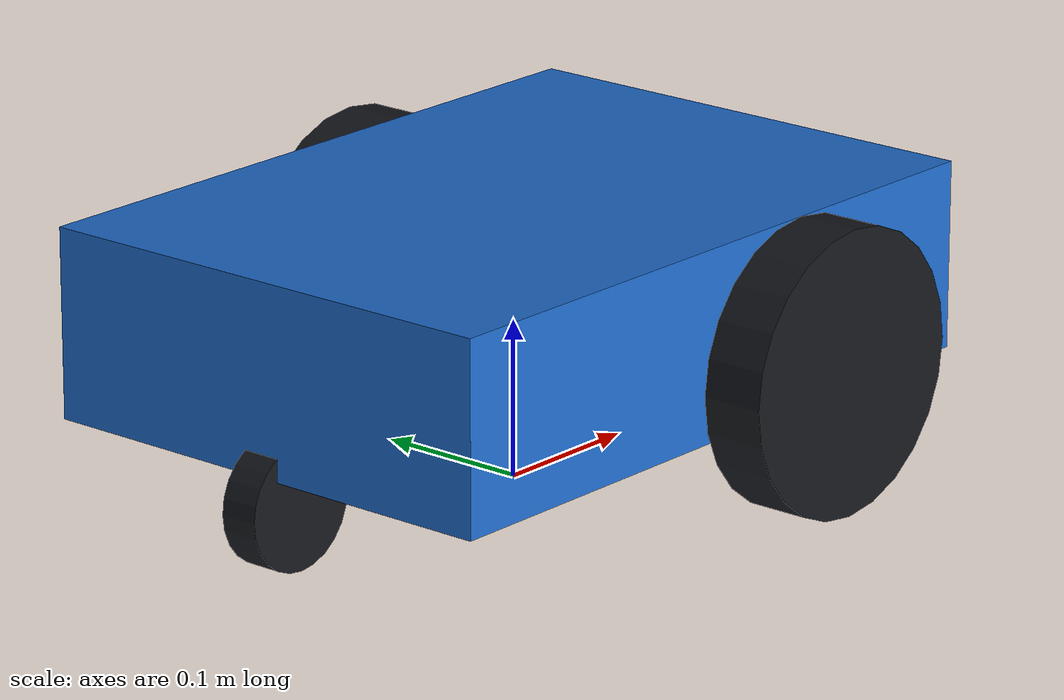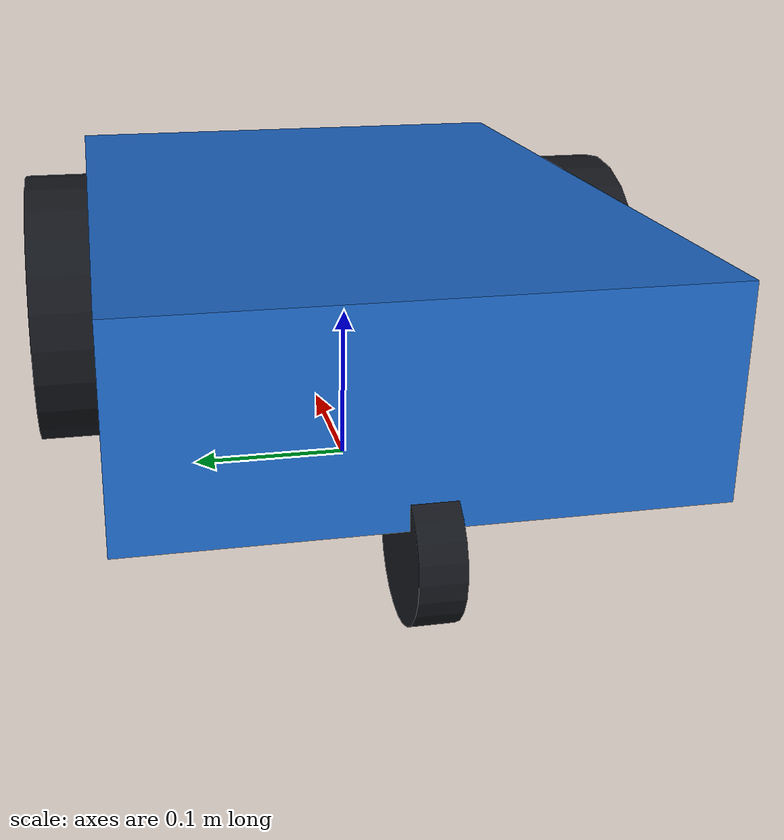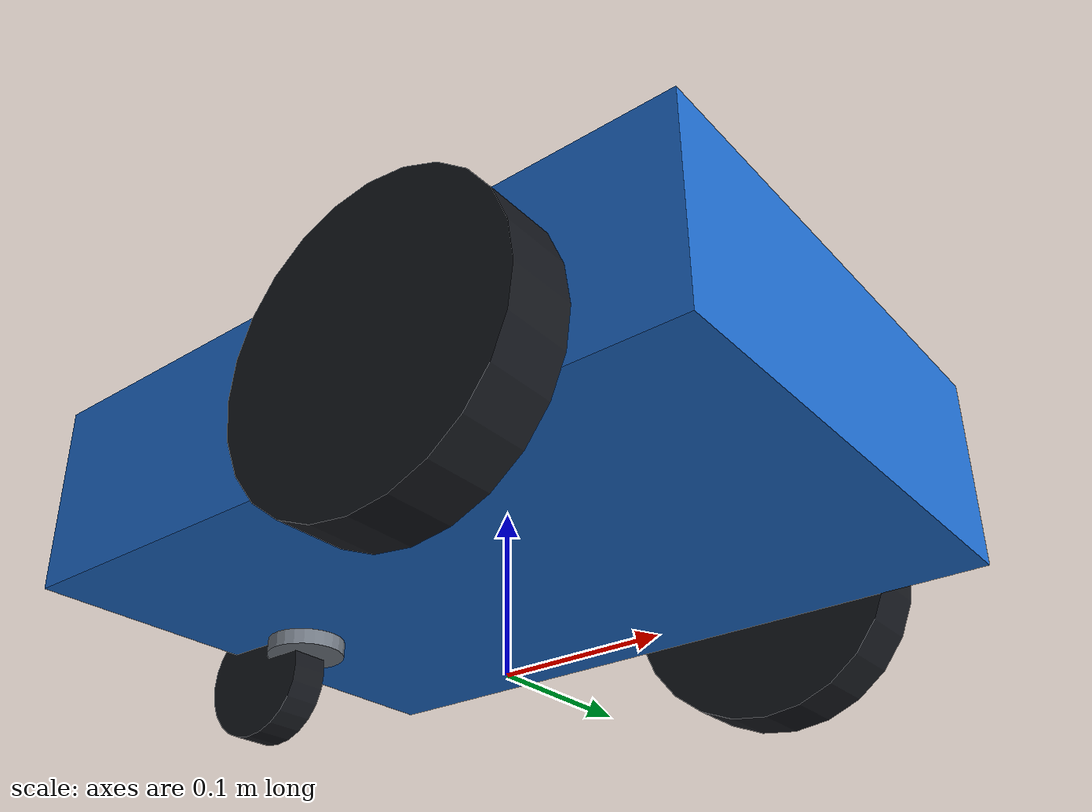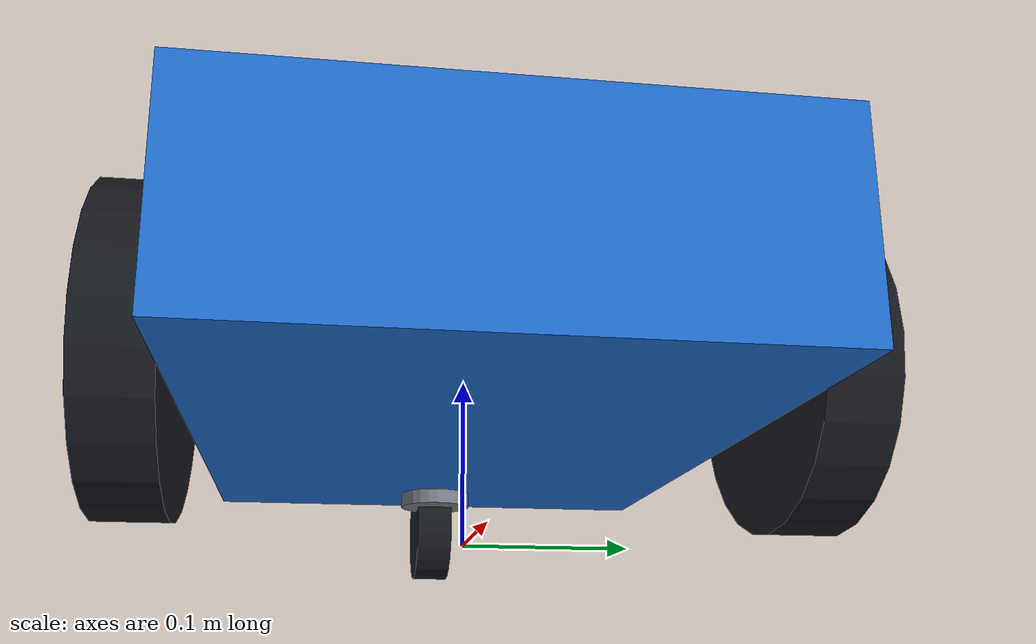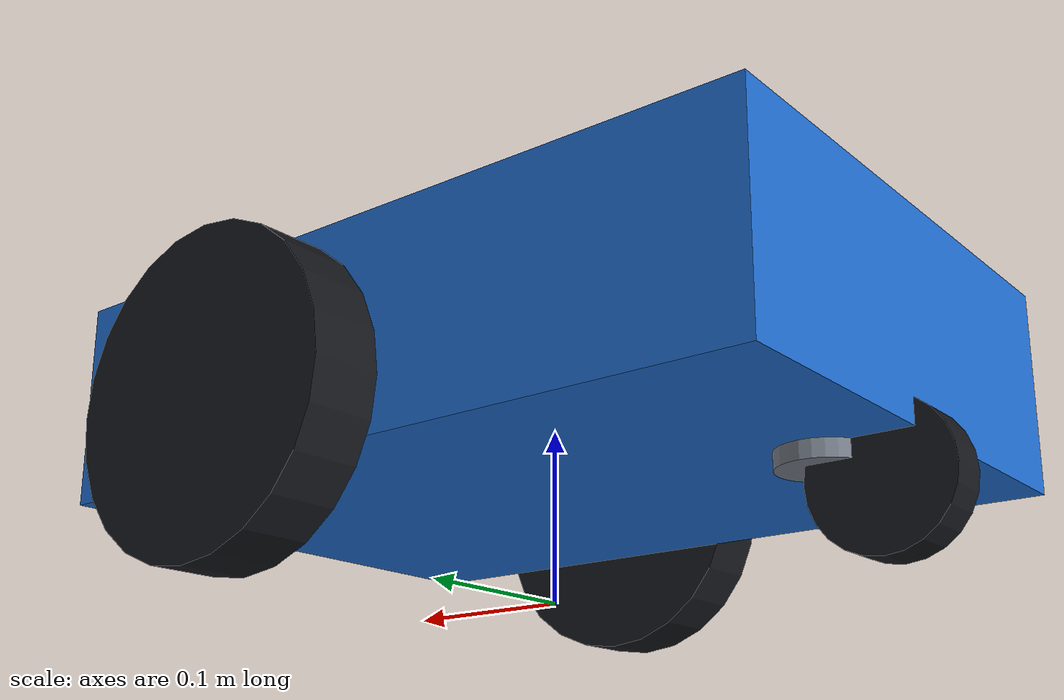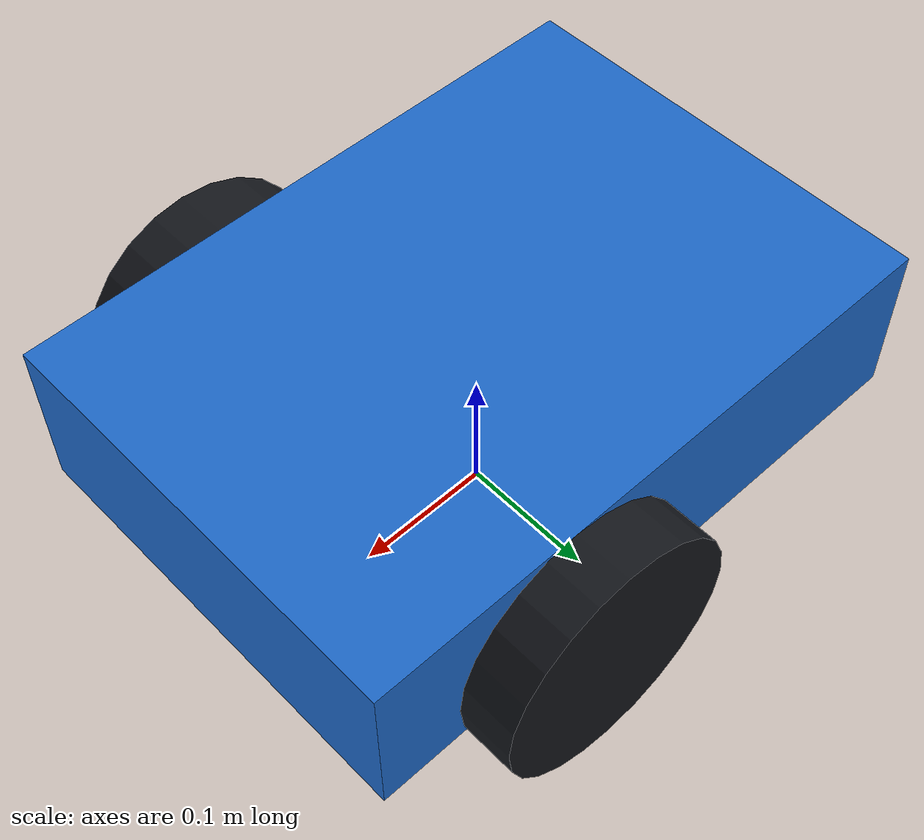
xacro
<?xml version="1.0"?>
<!-- Two-wheel differential-drive robot with a passive swivelling caster. -->
<robot name="diffbot" xmlns:xacro="http://www.ros.org/wiki/xacro">
  <xacro:include filename="$(find gazebo_tutorial_description)/urdf/common.xacro"/>
  <xacro:include filename="$(find gazebo_tutorial_plugins)/urdf/ground_truth_path_plugin.gazebo.xacro"/>

  <!-- Dimensions are declared once and reused by geometry and plugins. -->
  <xacro:property name="base_length" value="0.45"/>
  <xacro:property name="base_width" value="0.32"/>
  <xacro:property name="base_height" value="0.12"/>
  <xacro:property name="base_mass" value="7.0"/>
  <xacro:property name="base_z" value="0.12"/>

  <xacro:property name="wheel_radius" value="0.09"/>
  <xacro:property name="wheel_width" value="0.04"/>
  <xacro:property name="wheel_mass" value="0.55"/>
  <xacro:property name="wheel_separation" value="0.36"/>
  <xacro:property name="wheel_x" value="0.075"/>
  <xacro:property name="wheel_z" value="${wheel_radius - base_z}"/>

  <xacro:property name="caster_radius" value="0.04"/>
  <xacro:property name="caster_width" value="0.025"/>
  <xacro:property name="caster_pivot_x" value="-0.17"/>
  <xacro:property name="caster_trail" value="0.035"/>

  <!-- base_footprint is the planar navigation frame located on the ground. -->
  <link name="base_footprint"/>

  <joint name="base_footprint_joint" type="fixed">
    <parent link="base_footprint"/>
    <child link="base_link"/>
    <origin xyz="0 0 ${base_z}" rpy="0 0 0"/>
  </joint>

  <link name="base_link">
    <visual>
      <origin xyz="0 0 0" rpy="0 0 0"/>
      <geometry>
        <box size="${base_length} ${base_width} ${base_height}"/>
      </geometry>
      <material name="tutorial_blue"/>
    </visual>
    <collision>
      <origin xyz="0 0 0" rpy="0 0 0"/>
      <geometry>
        <box size="${base_length} ${base_width} ${base_height}"/>
      </geometry>
    </collision>
    <xacro:box_inertial
      mass="${base_mass}"
      x="${base_length}"
      y="${base_width}"
      z="${base_height}"/>
  </link>

  <gazebo reference="base_link">
    <material>Gazebo/Blue</material>
    <mu1>0.7</mu1>
    <mu2>0.7</mu2>
    <kp>1000000.0</kp>
    <kd>10.0</kd>
  </gazebo>

  <!-- The two driven wheels. Positive rotation about +y moves the body +x. -->
  <xacro:simple_wheel
    name="left_wheel"
    parent="base_link"
    xyz="${wheel_x} ${wheel_separation / 2.0} ${wheel_z}"
    radius="${wheel_radius}"
    width="${wheel_width}"
    mass="${wheel_mass}"/>

  <xacro:simple_wheel
    name="right_wheel"
    parent="base_link"
    xyz="${wheel_x} ${-wheel_separation / 2.0} ${wheel_z}"
    radius="${wheel_radius}"
    width="${wheel_width}"
    mass="${wheel_mass}"/>

  <!--
    Passive caster: the first joint swivels about +z and the second rolls about
    +y. The wheel centre trails the swivel axis, so contact forces align it.
  -->
  <link name="caster_swivel_link">
    <visual>
      <origin xyz="0 0 0" rpy="0 0 0"/>
      <geometry>
        <cylinder radius="0.025" length="0.04"/>
      </geometry>
      <material name="tutorial_gray"/>
    </visual>
    <collision>
      <origin xyz="0 0 0" rpy="0 0 0"/>
      <geometry>
        <cylinder radius="0.025" length="0.04"/>
      </geometry>
    </collision>
    <xacro:cylinder_inertial mass="0.12" radius="0.025" length="0.04"/>
  </link>

  <joint name="caster_swivel_joint" type="continuous">
    <parent link="base_link"/>
    <child link="caster_swivel_link"/>
    <origin xyz="${caster_pivot_x} 0 -0.05" rpy="0 0 0"/>
    <axis xyz="0 0 1"/>
    <limit effort="2.0" velocity="20.0"/>
    <dynamics damping="0.08" friction="0.01"/>
  </joint>

  <link name="caster_wheel_link">
    <visual>
      <origin xyz="0 0 0" rpy="${PI / 2.0} 0 0"/>
      <geometry>
        <cylinder radius="${caster_radius}" length="${caster_width}"/>
      </geometry>
      <material name="tutorial_dark"/>
    </visual>
    <collision>
      <origin xyz="0 0 0" rpy="${PI / 2.0} 0 0"/>
      <geometry>
        <cylinder radius="${caster_radius}" length="${caster_width}"/>
      </geometry>
    </collision>
    <xacro:cylinder_inertial
      mass="0.14"
      radius="${caster_radius}"
      length="${caster_width}"
      origin_rpy="${PI / 2.0} 0 0"/>
  </link>

  <joint name="caster_wheel_joint" type="continuous">
    <parent link="caster_swivel_link"/>
    <child link="caster_wheel_link"/>
    <origin xyz="${-caster_trail} 0 -0.03" rpy="0 0 0"/>
    <axis xyz="0 1 0"/>
    <limit effort="2.0" velocity="30.0"/>
    <dynamics damping="0.03" friction="0.0"/>
  </joint>

  <gazebo reference="caster_swivel_link">
    <material>Gazebo/Grey</material>
    <selfCollide>false</selfCollide>
  </gazebo>
  <gazebo reference="caster_wheel_link">
    <material>Gazebo/Black</material>
    <mu1>0.6</mu1>
    <mu2>0.6</mu2>
    <kp>1000000.0</kp>
    <kd>10.0</kd>
    <minDepth>0.001</minDepth>
    <maxVel>0.1</maxVel>
  </gazebo>

  <!-- ROS 2 Humble / Gazebo Classic 11 differential-drive model plugin. -->
  <gazebo>
    <plugin name="diffbot_diff_drive" filename="libgazebo_ros_diff_drive.so">
      <ros>
        <namespace>/</namespace>
        <remapping>cmd_vel:=cmd_vel</remapping>
        <remapping>odom:=odom</remapping>
      </ros>
      <update_rate>50.0</update_rate>

      <left_joint>left_wheel_joint</left_joint>
      <right_joint>right_wheel_joint</right_joint>
      <wheel_separation>${wheel_separation}</wheel_separation>
      <wheel_diameter>${2.0 * wheel_radius}</wheel_diameter>

      <max_wheel_torque>20.0</max_wheel_torque>
      <max_wheel_acceleration>5.0</max_wheel_acceleration>

      <!-- 0 selects wheel-encoder integration instead of world ground truth. -->
      <odometry_source>0</odometry_source>
      <odometry_frame>odom</odometry_frame>
      <robot_base_frame>base_footprint</robot_base_frame>
      <publish_odom>true</publish_odom>
      <publish_odom_tf>true</publish_odom_tf>
      <!-- robot_state_publisher owns base-to-wheel TF, avoiding duplicates. -->
      <publish_wheel_tf>false</publish_wheel_tf>
      <covariance_x>0.0001</covariance_x>
      <covariance_y>0.0001</covariance_y>
      <covariance_yaw>0.001</covariance_yaw>
    </plugin>

    <!-- Publish the actual Gazebo angles for every non-fixed joint. -->
    <plugin name="diffbot_joint_states" filename="libgazebo_ros_joint_state_publisher.so">
      <ros>
        <namespace>/</namespace>
        <remapping>joint_states:=joint_states</remapping>
      </ros>
      <update_rate>50.0</update_rate>
      <joint_name>left_wheel_joint</joint_name>
      <joint_name>right_wheel_joint</joint_name>
      <joint_name>caster_swivel_joint</joint_name>
      <joint_name>caster_wheel_joint</joint_name>
    </plugin>
  </gazebo>

  <!-- Custom tutorial plugin: Gazebo world pose for odometry comparison. -->
  <xacro:ground_truth_path_plugin topic="ground_truth_path" frame="world"/>
</robot>

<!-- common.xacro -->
<!--
  Shared Xacro helpers for the tutorial robots.

  Coordinate convention (REP-103): +x forward, +y left, +z up.
  All dimensions use metres, mass uses kilograms, and angles use radians.
-->
<robot xmlns:xacro="http://www.ros.org/wiki/xacro">
  <xacro:property name="PI" value="3.141592653589793"/>

  <material name="tutorial_blue">
    <color rgba="0.12 0.42 0.80 1.0"/>
  </material>
  <material name="tutorial_orange">
    <color rgba="0.95 0.45 0.08 1.0"/>
  </material>
  <material name="tutorial_dark">
    <color rgba="0.08 0.09 0.11 1.0"/>
  </material>
  <material name="tutorial_gray">
    <color rgba="0.45 0.48 0.52 1.0"/>
  </material>

  <!-- Solid cuboid inertia about its centre of mass. -->
  <xacro:macro name="box_inertial"
               params="mass x y z origin_xyz:='0 0 0' origin_rpy:='0 0 0'">
    <inertial>
      <origin xyz="${origin_xyz}" rpy="${origin_rpy}"/>
      <mass value="${mass}"/>
      <inertia
        ixx="${mass * (y * y + z * z) / 12.0}"
        ixy="0.0"
        ixz="0.0"
        iyy="${mass * (x * x + z * z) / 12.0}"
        iyz="0.0"
        izz="${mass * (x * x + y * y) / 12.0}"/>
    </inertial>
  </xacro:macro>

  <!--
    Solid cylinder inertia. Its symmetry axis is local +z; origin_rpy must
    match the visual/collision rotation when the cylinder represents a wheel.
  -->
  <xacro:macro name="cylinder_inertial"
               params="mass radius length origin_xyz:='0 0 0' origin_rpy:='0 0 0'">
    <inertial>
      <origin xyz="${origin_xyz}" rpy="${origin_rpy}"/>
      <mass value="${mass}"/>
      <inertia
        ixx="${mass * (3.0 * radius * radius + length * length) / 12.0}"
        ixy="0.0"
        ixz="0.0"
        iyy="${mass * (3.0 * radius * radius + length * length) / 12.0}"
        iyz="0.0"
        izz="${mass * radius * radius / 2.0}"/>
    </inertial>
  </xacro:macro>

  <!-- Solid sphere inertia about its centre. -->
  <xacro:macro name="sphere_inertial"
               params="mass radius origin_xyz:='0 0 0' origin_rpy:='0 0 0'">
    <inertial>
      <origin xyz="${origin_xyz}" rpy="${origin_rpy}"/>
      <mass value="${mass}"/>
      <inertia
        ixx="${2.0 * mass * radius * radius / 5.0}"
        ixy="0.0"
        ixz="0.0"
        iyy="${2.0 * mass * radius * radius / 5.0}"
        iyz="0.0"
        izz="${2.0 * mass * radius * radius / 5.0}"/>
    </inertial>
  </xacro:macro>

  <!-- ODE contact parameters shared by wheels and chassis parts. -->
  <xacro:macro name="gazebo_contact"
               params="reference mu1:=1.0 mu2:=1.0 kp:=1000000.0 kd:=10.0 min_depth:=0.001 max_vel:=0.1">
    <gazebo reference="${reference}">
      <mu1>${mu1}</mu1>
      <mu2>${mu2}</mu2>
      <kp>${kp}</kp>
      <kd>${kd}</kd>
      <minDepth>${min_depth}</minDepth>
      <maxVel>${max_vel}</maxVel>
    </gazebo>
  </xacro:macro>

  <!-- A reusable wheel link and continuous joint. Wheel axle is local +y. -->
  <xacro:macro name="simple_wheel"
               params="name parent xyz radius width mass material:=tutorial_dark mu1:=1.2 mu2:=1.2">
    <link name="${name}_link">
      <visual>
        <origin xyz="0 0 0" rpy="${PI / 2.0} 0 0"/>
        <geometry>
          <cylinder radius="${radius}" length="${width}"/>
        </geometry>
        <material name="${material}"/>
      </visual>
      <collision>
        <origin xyz="0 0 0" rpy="${PI / 2.0} 0 0"/>
        <geometry>
          <cylinder radius="${radius}" length="${width}"/>
        </geometry>
      </collision>
      <xacro:cylinder_inertial
        mass="${mass}"
        radius="${radius}"
        length="${width}"
        origin_rpy="${PI / 2.0} 0 0"/>
    </link>

    <joint name="${name}_joint" type="continuous">
      <parent link="${parent}"/>
      <child link="${name}_link"/>
      <origin xyz="${xyz}" rpy="0 0 0"/>
      <axis xyz="0 1 0"/>
      <limit effort="20.0" velocity="30.0"/>
      <dynamics damping="0.05" friction="0.0"/>
    </joint>

    <gazebo reference="${name}_link">
      <material>Gazebo/Black</material>
      <mu1>${mu1}</mu1>
      <mu2>${mu2}</mu2>
      <kp>1000000.0</kp>
      <kd>10.0</kd>
      <minDepth>0.001</minDepth>
      <maxVel>0.1</maxVel>
    </gazebo>
  </xacro:macro>
</robot>
